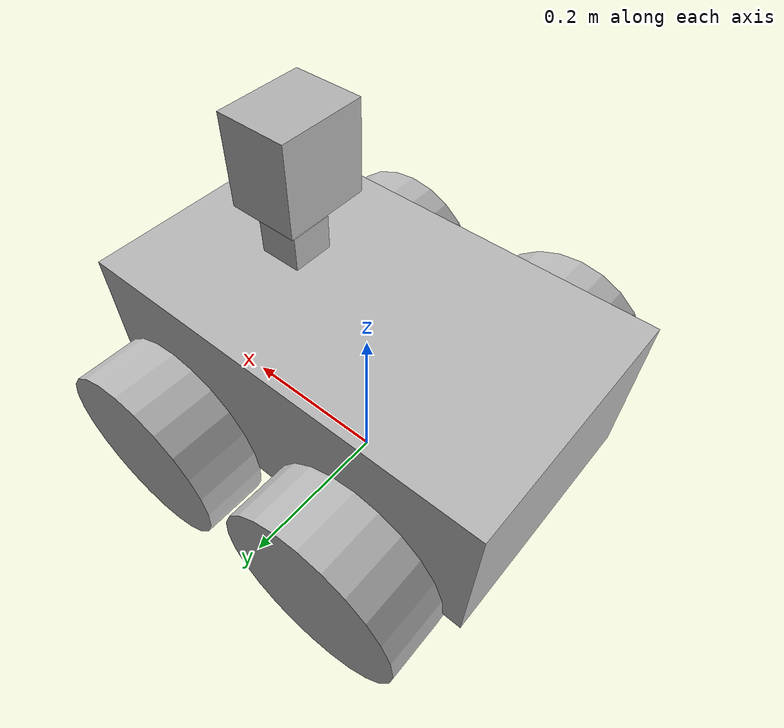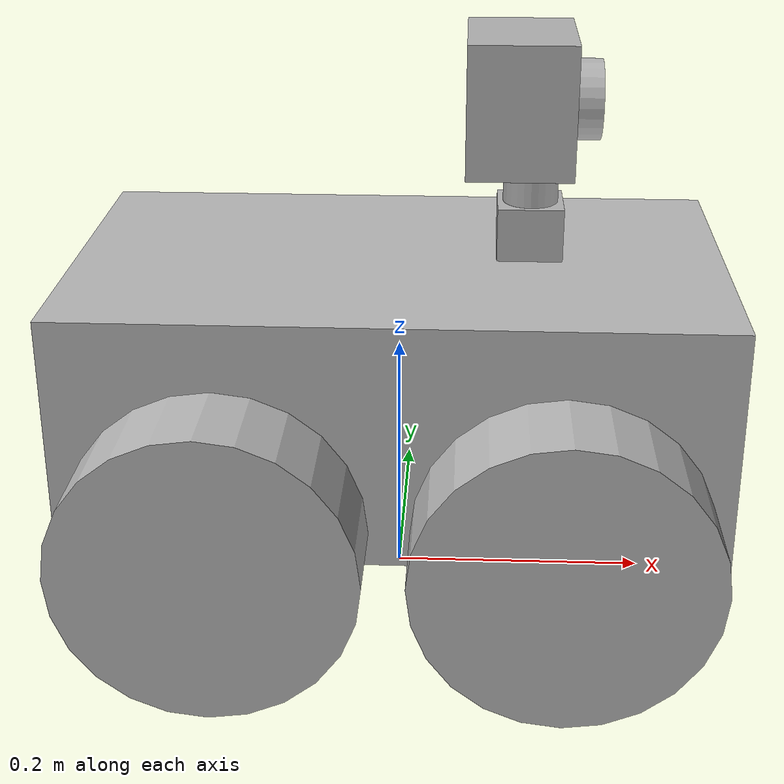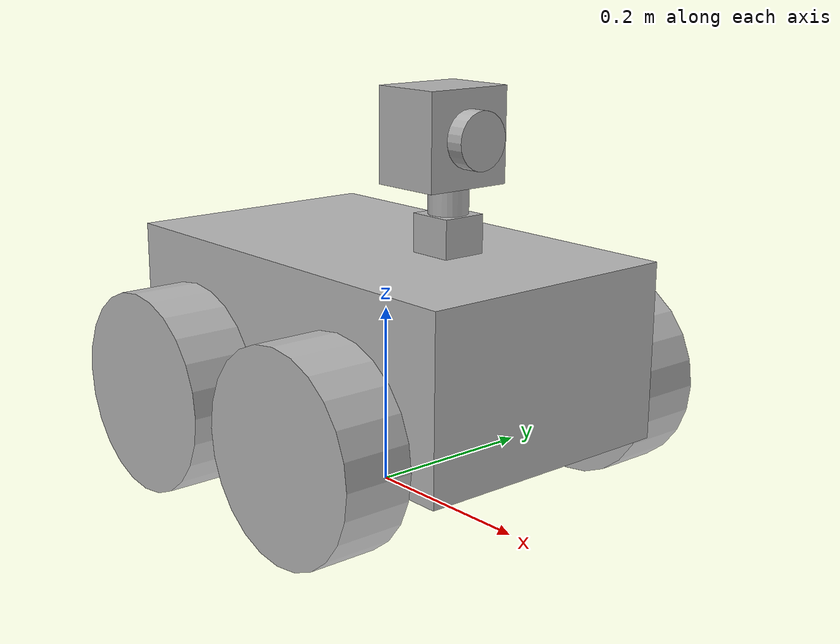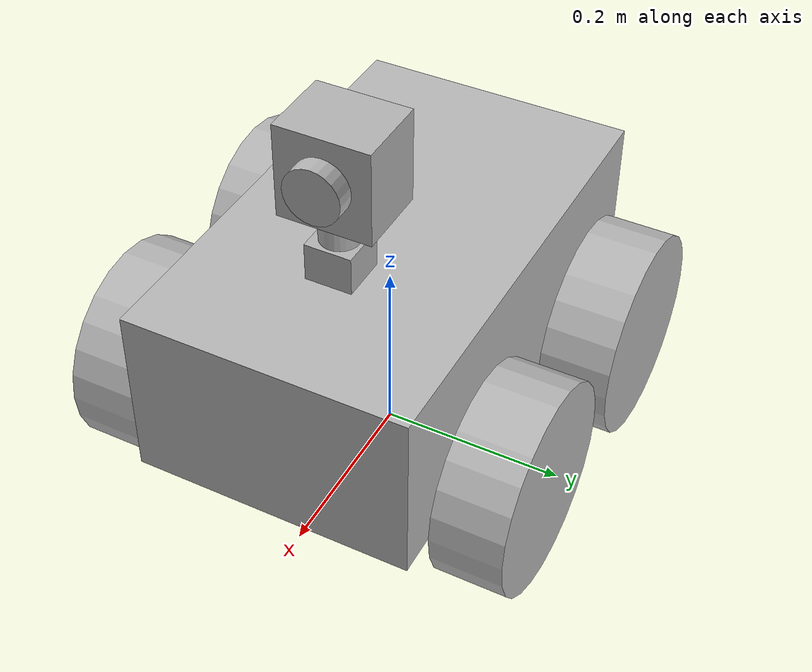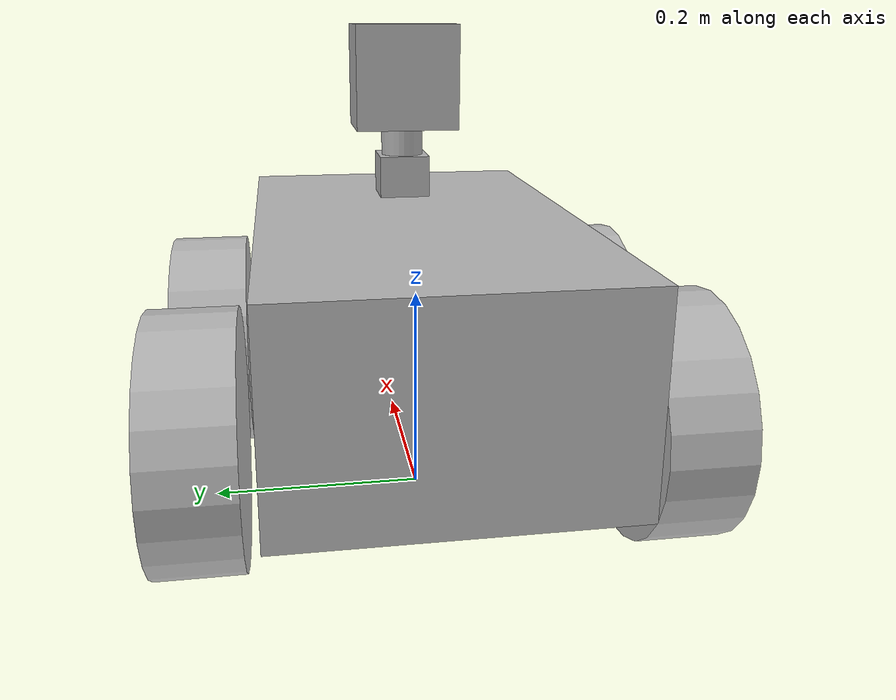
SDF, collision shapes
<?xml version="1.0" ?>
<sdf version="1.5">
  <model name="robot">
    <pose>0 0 0.180 0 0 0</pose>
    <static>false</static>
    <link name="base_link">
      <inertial>
        <mass>14.0</mass>
        <inertia>
          <ixx>0.147116667</ixx>
          <ixy>0.0</ixy>
          <ixz>0.0</ixz>
          <iyy>0.334951167</iyy>
          <iyz>0.0</iyz>
          <izz>0.3978345</izz>
        </inertia>
      </inertial>
      <collision name="base_collision">
        <geometry>
          <box>
            <size>0.501 0.300 0.19</size>
          </box>
        </geometry>
      </collision>
      <visual name="base_visual">
        <geometry>
          <mesh>
            <uri>model://robot_p3at/meshes/chassis.dae</uri>
          </mesh>
        </geometry>
      </visual>
    </link>
    <link name="right_front_wheel">
      <pose>0.125 -0.201 -0.06 1.5707 0 0</pose>

      <inertial>
        <mass>1.5</mass>
        <inertia>
          <ixx>0.005240625</ixx>
          <iyy>0.005240625</iyy>
          <izz>0.009075</izz>
          <ixy>0</ixy>
          <ixz>0</ixz>
          <iyz>0</iyz>
        </inertia>
      </inertial>

      <collision name="collision">
        <geometry>
          <cylinder>
            <radius>0.110</radius>
            <length>0.075</length>
          </cylinder>
        </geometry>
        <surface>
          <friction>
            <ode>
              <mu>1</mu>
              <mu2>1</mu2>

            </ode>
          </friction>
        </surface>
      </collision>
      <visual name="visual">
        <geometry>
          <mesh>
            <uri>model://robot_p3at/meshes/wheel.dae</uri>
          </mesh>
        </geometry>
      </visual>
    </link>
    <link name="left_front_wheel">
      <pose>0.125 0.201 -0.06 1.5707 0 0</pose>

      <inertial>
        <mass>1.5</mass>
        <inertia>
          <ixx>0.005240625</ixx>
          <iyy>0.005240625</iyy>
          <izz>0.009075</izz>
          <ixy>0</ixy>
          <ixz>0</ixz>
          <iyz>0</iyz>
        </inertia>
      </inertial>

      <collision name="collision">
        <geometry>
          <cylinder>
            <radius>0.110</radius>
            <length>0.075</length>
          </cylinder>
        </geometry>
        <surface>
          <friction>
            <ode>
              <mu>1</mu>
              <mu2>1</mu2>

            </ode>
          </friction>
        </surface>
      </collision>
      <visual name="visual">
        <geometry>
          <mesh>
            <uri>model://robot_p3at/meshes/wheel.dae</uri>
          </mesh>
        </geometry>
      </visual>
    </link>
    <link name="right_rear_wheel">
      <pose>-0.125 -0.201 -0.06 1.5707 0 0</pose>

      <inertial>
        <mass>1.5</mass>
        <inertia>
          <ixx>0.005240625</ixx>
          <iyy>0.005240625</iyy>
          <izz>0.009075</izz>
          <ixy>0</ixy>
          <ixz>0</ixz>
          <iyz>0</iyz>
        </inertia>
      </inertial>

      <collision name="collision">
        <geometry>
          <cylinder>
            <radius>0.110</radius>
            <length>0.075</length>
          </cylinder>
        </geometry>
        <surface>
          <friction>
            <ode>
              <mu>1</mu>
              <mu2>1</mu2>
            </ode>
          </friction>
        </surface>
      </collision>
      <visual name="visual">
        <geometry>
          <mesh>
            <uri>model://robot_p3at/meshes/wheel.dae</uri>
          </mesh>
        </geometry>
      </visual>
    </link>
    <link name="left_rear_wheel">
      <pose>-0.125 0.201 -0.06 1.5707 0 0</pose>

      <inertial>
        <mass>1.5</mass>
        <inertia>
          <ixx>0.005240625</ixx>
          <iyy>0.005240625</iyy>
          <izz>0.009075</izz>
          <ixy>0</ixy>
          <ixz>0</ixz>
          <iyz>0</iyz>
        </inertia>
      </inertial>

      <collision name="collision">
        <geometry>
          <cylinder>
            <radius>0.110</radius>
            <length>0.075</length>
          </cylinder>
        </geometry>
        <surface>
          <friction>
            <ode>
              <mu>1</mu>
              <mu2>1</mu2>
            </ode>
          </friction>
        </surface>
      </collision>
      <visual name="visual">
        <geometry>
          <mesh>
            <uri>model://robot_p3at/meshes/wheel.dae</uri>
          </mesh>
        </geometry>
      </visual>
    </link>
    <joint type="revolute" name="right_front">
      <pose>0 0 0 0 0 0</pose>
      <child>right_front_wheel</child>
      <parent>base_link</parent>
      <axis>
        <xyz>0 1 0</xyz>
        <use_parent_model_frame>true</use_parent_model_frame>
      </axis>
    </joint>
    <joint type="revolute" name="right_rear">
      <pose>0 0 0 0 0 0</pose>
      <child>right_rear_wheel</child>
      <parent>base_link</parent>
      <axis>
        <xyz>0 1 0</xyz>
        <use_parent_model_frame>true</use_parent_model_frame>
      </axis>
    </joint>
    <joint type="revolute" name="left_front">
      <pose>0 0 0 0 0 0</pose>
      <child>left_front_wheel</child>
      <parent>base_link</parent>
      <axis>
        <xyz>0 1 0</xyz>
        <use_parent_model_frame>true</use_parent_model_frame>
      </axis>
    </joint>
    <joint type="revolute" name="left_rear">
      <pose>0 0 0 0 0 0</pose>
      <child>left_rear_wheel</child>
      <parent>base_link</parent>
      <axis>
        <xyz>0 1 0</xyz>
        <use_parent_model_frame>true</use_parent_model_frame>
      </axis>
    </joint>

    <link name="camera_link">
      <pose>0.1 0 0.22 0 0 0</pose>
      <audio_sink /> <!-- Camera and microphone should be combined -->
      <inertial>
        <mass>0.1</mass>
        <inertia>
          <ixx>0.000166667</ixx>
          <iyy>0.000166667</iyy>
          <izz>0.000166667</izz>
        </inertia>
      </inertial>
      <collision name="collision-box">
        <pose>-0.01 0 0 0 0 0</pose>
        <geometry>
          <box>
            <size>0.08 0.1 0.1</size>
          </box>
        </geometry>
      </collision>
      <collision name="collision-lens">
        <pose>0.04 0 0 0 1.57 0</pose>
        <geometry>
          <cylinder>
            <radius>0.03</radius>
            <length>0.02</length>
          </cylinder>
        </geometry>
      </collision>
      <visual name="visual-box">
        <pose>-0.01 0 0 0 0 0</pose>
        <geometry>
          <box>
            <size>0.08 0.1 0.1</size>
          </box>
        </geometry>
        <material>
          <ambient>0.3 0.3 0.3 1</ambient>
          <diffuse>0.7 0.7 0.7 1</diffuse>
          <specular>0.1 0.1 0.1 1</specular>
          <emissive>0 0 0 0</emissive>
        </material>
      </visual>
      <visual name="visual-lens">
        <pose>0.04 0 0 0 1.57 0</pose>
        <geometry>
          <cylinder>
            <radius>0.03</radius>
            <length>0.02</length>
          </cylinder>
        </geometry>
        <material>
          <ambient>0 0 0 1</ambient>
          <diffuse>0 0 0 1</diffuse>
          <specular>0.1 0.1 0.1 1</specular>
          <emissive>0 0 0 0</emissive>
        </material>
      </visual>
<!-- RGB CAMERA -->
      <sensor type="camera" name="camera">
        <update_rate>20</update_rate>
        <visualize>false</visualize>
        <camera name="camera">
          <horizontal_fov>1.047</horizontal_fov>
          <image>
            <width>320</width>
            <height>240</height>
            <format>R8G8B8</format>
          </image>
          <clip>
            <near>0.1</near>
            <far>100</far>
          </clip>

          <noise>
            <type>gaussian</type>
            <mean>0.0</mean>
            <stddev>0.007</stddev>
          </noise>
        </camera>
        <plugin name="camera_controller" filename="libgazebo_ros_camera.so">
          <alwaysOn>true</alwaysOn>
          <updateRate>0.0</updateRate>
          <cameraName>camera/rgb</cameraName>
          <imageTopicName>image_raw</imageTopicName>
          <cameraInfoTopicName>camera_info</cameraInfoTopicName>
          <frameName>camera_link</frameName>
          <hackBaseline>0.07</hackBaseline>
          <distortionK1>0.0</distortionK1>
          <distortionK2>0.0</distortionK2>
          <distortionK3>0.0</distortionK3>
          <distortionT1>0.0</distortionT1>
          <distortionT2>0.0</distortionT2>
        </plugin>
      </sensor>
<!-- THERMAL CAMERA -->
      <sensor type="camera" name="thermal_camera_sensor">
        <update_rate>10</update_rate>
        <camera name="camera_ros_thermal">
          <horizontal_fov>1.047</horizontal_fov>
          <image>
            <width>160</width>
            <height>120</height>
            <format>R8G8B8</format>
          </image>
          <clip>
            <near>0.1</near>
            <far>100</far>
          </clip>

        </camera>
        <plugin name="thermal_camera_controller"
                filename="libgazebo_ros_thermal_camera_pink.so">
          <alwaysOn>true</alwaysOn>
          <updateRate>10</updateRate>
          <imageTopicName>camera/thermal/image_raw</imageTopicName>
          <cameraInfoTopicName>camera/thermal/camera_info</cameraInfoTopicName>
          <frameName>camera_link</frameName>
        </plugin>
      </sensor>
    </link>
    <joint name="camera_joint" type="revolute">
      <parent>base_link</parent>
      <child>camera_link</child>
      <pose>0 0 0 0 0 0</pose>
      <axis>
        <xyz>0 0 1</xyz>
        <limit>
          <lower>0</lower>
          <upper>0</upper>
        </limit>
      </axis>
    </joint>

    <link name="hokuyo_link">
      <pose>0.1 0 0.135 0 0 0</pose>
      <inertial>
        <mass>0.1</mass>
        <inertia>
          <ixx>0.6205208333e-04</ixx>
          <iyy>0.6205208333e-04</iyy>
          <izz>4.1927083333e-05</izz>
        </inertia>
      </inertial>
      <visual name="visual-base">
        <pose>0 0 -0.0145 0 0 0</pose>
        <geometry>
          <box>
            <size>0.05 0.05 0.041</size>
          </box>
        </geometry>
        <material>
          <ambient>0.3 0.3 0.3 1</ambient>
          <diffuse>0.7 0.7 0.7 1</diffuse>
          <specular>0.1 0.1 0.1 1</specular>
          <emissive>0 0 0 0</emissive>
        </material>
      </visual>
      <visual name="visual-top">
        <pose>0 0 0.0205 0 0 0</pose>
        <geometry>
          <cylinder>
            <radius>0.021</radius>
            <length>0.029</length>
          </cylinder>
        </geometry>
        <material>
          <ambient>0 0 0 1</ambient>
          <diffuse>0 0 0 1</diffuse>
          <specular>0.1 0.1 0.1 1</specular>
          <emissive>0 0 0 0</emissive>
        </material>
      </visual>
      <visual name="visual-top-back">
        <pose>-0.02 0 0.019 0 0 0</pose>
        <geometry>
          <box>
            <size>0.01 0.01 0.025</size>
          </box>
        </geometry>
        <material>
          <ambient>0.1 0.1 0.1 1</ambient>
          <diffuse>0.3 0.3 0.3 1</diffuse>
          <specular>0.1 0.1 0.1 1</specular>
          <emissive>0 0 0 0</emissive>
        </material>
      </visual>
      <collision name="collision-base">
        <pose>0 0 -0.0145 0 0 0</pose>
        <geometry>
          <box>
            <size>0.05 0.05 0.041</size>
          </box>
        </geometry>
      </collision>
      <collision name="collision-top">
        <pose>0 0 0.0205 0 0 0</pose>
        <geometry>
          <cylinder>
            <radius>0.021</radius>
            <length>0.029</length>
          </cylinder>
        </geometry>
      </collision>
      <sensor type="ray" name="lms200">
        <always_on>true</always_on>
        <update_rate>30</update_rate>
        <pose>0 0 0.01815 0 0 0</pose> <!-- From URG04LX Spec -->
        <visualize>false</visualize>
        <ray>
          <scan>
            <horizontal>
		          <samples>181</samples>
		          <resolution>1</resolution>
		          <min_angle>-1.570796</min_angle> <!-- 90deg: -1.570796 -->
		          <max_angle>1.570796</max_angle>  <!-- 90deg: 1.570796  -->
            </horizontal>
          </scan>
          <range>
            <min>0.1</min>
            <max>30</max> <!-- From URG04LX Spec -->
            <resolution>0.001</resolution> <!-- From URG04LX Spec -->
          </range>
        </ray>
        <plugin name="gazebo_ros_hokuyo_controller" filename="libgazebo_ros_ray_sensor.so">
            <ros>
              <argument>~/out:=scan</argument>
            </ros>
            <output_type>sensor_msgs/LaserScan</output_type>
        </plugin>
      </sensor>
    </link>
    <joint name="hokuyo_joint" type="revolute">
      <parent>base_link</parent>
      <child>hokuyo_link</child>
      <pose>0 0 0 0 0 0</pose>
      <axis>
        <xyz>0 0 1</xyz>
        <limit>
          <lower>0</lower>
          <upper>0</upper>
        </limit>
      </axis>
    </joint>

    <plugin name='skid_steer_drive' filename='libgazebo_ros_diff_drive.so'>
        <!-- Update rate -->
        <update_rate>500</update_rate>

        <!-- Number of wheel pairs -->
        <num_wheel_pairs>2</num_wheel_pairs>

        <!-- wheels0 -->
        <left_joint>left_front</left_joint>
        <right_joint>right_front</right_joint>

        <!-- wheels1-->
        <left_joint>left_rear</left_joint>
        <right_joint>right_rear</right_joint>

        <!-- kinematics -->
        <wheel_separation>0.4</wheel_separation>
        <wheel_separation>0.4</wheel_separation>

        <wheel_diameter>0.215</wheel_diameter>
        <wheel_diameter>0.215</wheel_diameter>

        <!-- limits -->
        <max_wheel_torque>200</max_wheel_torque>
        <max_wheel_acceleration>1.0</max_wheel_acceleration>

        <!-- output -->
        <publish_odom>true</publish_odom>
        <publish_odom_tf>true</publish_odom_tf>
        <publish_wheel_tf>true</publish_wheel_tf>

        <odometry_frame>odom</odometry_frame>
        <robot_base_frame>base_link</robot_base_frame>

      </plugin>

    <plugin name="p3at_joint_state" filename="libgazebo_ros_joint_state_publisher.so">
      <ros>
        <remapping>out:=joint_states</remapping>
      </ros>
      <update_rate>30</update_rate>
      <joint_name>left_front</joint_name>
      <joint_name>right_front</joint_name>
      <joint_name>left_rear</joint_name>
      <joint_name>right_rear</joint_name>
    </plugin>

    <plugin name="gazebo_ros_control" filename="libgazebo_ros_control.so">
      <robotSimType>gazebo_ros_control/DefaultRobotHWSim</robotSimType>
    </plugin>

  </model>
</sdf>
